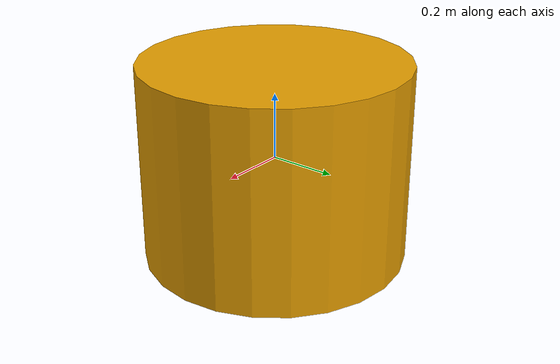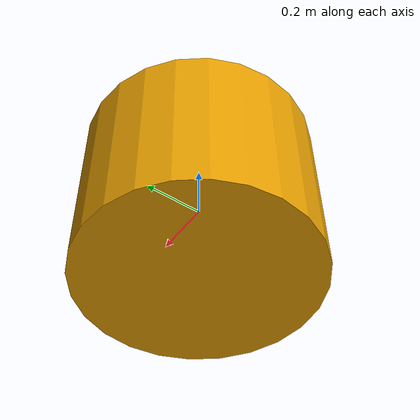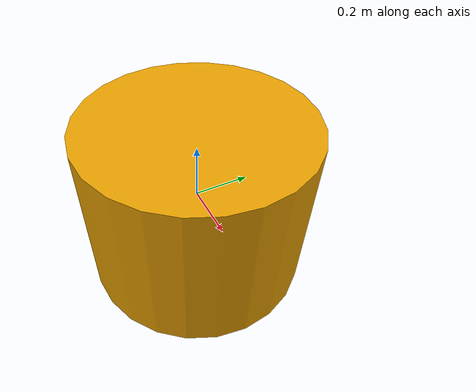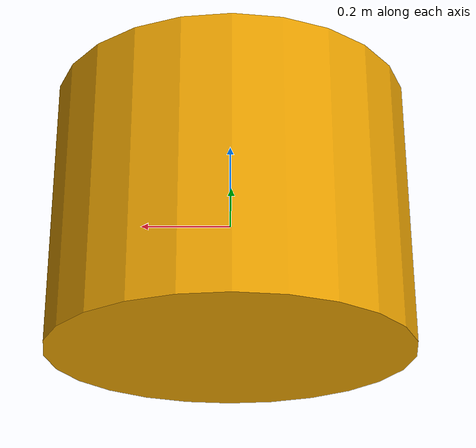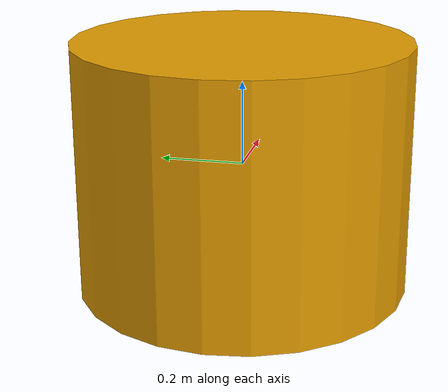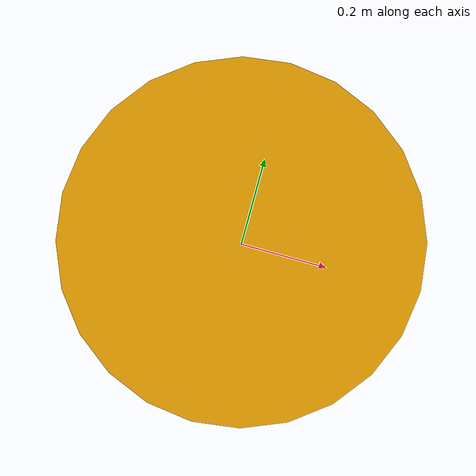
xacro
<?xml version="1.0"?>
<robot xmlns:xacro="http://ros.org/wiki/xacro">
  <!-- load parameter -->
  <xacro:property name="vehicle_info" value="${xacro.load_yaml('$(find logiee_s-tc_description)/config/vehicle_info.param.yaml')}"/>

  <!-- vehicle body -->
  <link name="base_link">
    <visual>
      <origin xyz="0 0 0" rpy="0 0 0"/>
      <geometry>
          <cylinder length="0.6" radius="0.4"/>
      </geometry>
    </visual>
  </link>
</robot>
